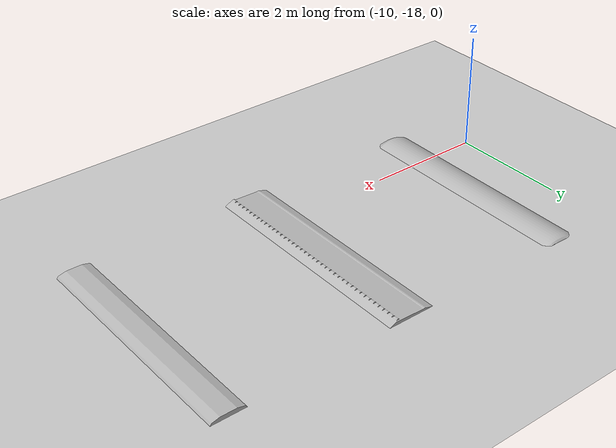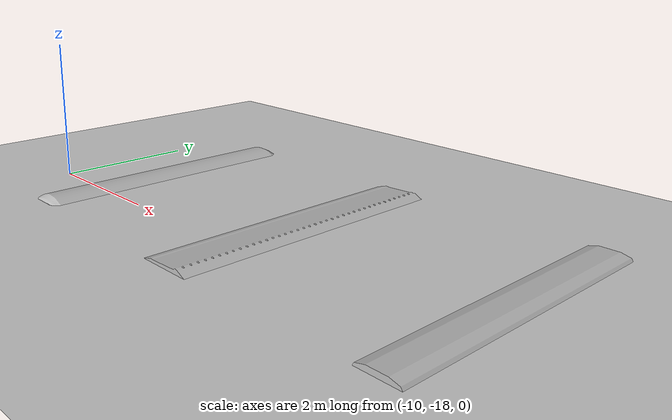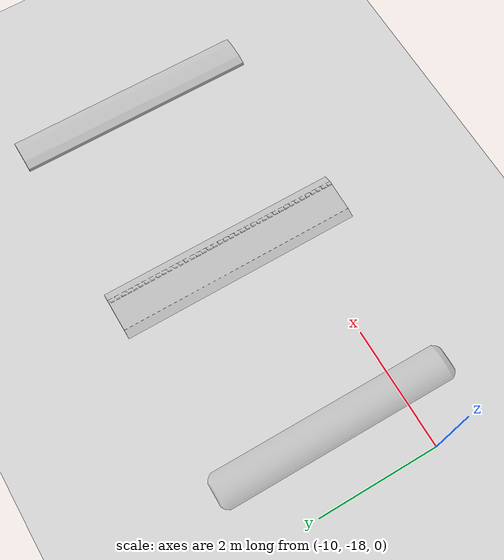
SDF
<sdf version="1.9">
 <world name="empty">
  <model name="ground_plane">
   <static>true</static>
   <link name="link">
    <collision name="collision">
     <geometry><plane><normal>0 0 1</normal><size>100 100</size></plane></geometry>
    </collision>
    <visual name="visual">
     <geometry><plane><normal>0 0 1</normal><size>100 100</size></plane></geometry>
     <material>
      <ambient>0.8 0.8 0.8 1</ambient>
      <diffuse>0.8 0.8 0.8 1</diffuse>
      <specular>0.8 0.8 0.8 1</specular>
     </material>
    </visual>
    <inertial>
     <mass>1</mass>
     <inertia><ixx>1</ixx><ixy>0</ixy><ixz>0</ixz><iyy>1</iyy><iyz>0</iyz><izz>1</izz></inertia>
    </inertial>
   </link>
  </model>
  <model name="speed_bump_1">
   <static>true</static>
   <link name="link">
    <collision name="collision">
     <geometry><mesh><uri>models/speed_bump_1//bump_1.dae</uri></mesh></geometry>
     <surface><friction><ode><mu>0.90000000000000002</mu><mu2>0.59999999999999998</mu2></ode></friction></surface>
    </collision>
    <visual name="visual"><geometry><mesh><uri>models/speed_bump_1//bump_1.dae</uri></mesh></geometry></visual>
    <inertial>
     <mass>1</mass>
     <inertia><ixx>1</ixx><ixy>0</ixy><ixz>0</ixz><iyy>1</iyy><iyz>0</iyz><izz>1</izz></inertia>
    </inertial>
   </link>
   <pose>-2.46827 -18.89366 0.0 0.0 -0.0 1.57</pose>
  </model>
  <model name="speed_bump_2">
   <static>true</static>
   <link name="link">
    <collision name="collision">
     <geometry><mesh><uri>models/speed_bump_2//bump_2.dae</uri></mesh></geometry>
     <surface><friction><ode><mu>0.90000000000000002</mu><mu2>0.59999999999999998</mu2></ode></friction></surface>
    </collision>
    <visual name="visual"><geometry><mesh><uri>models/speed_bump_2//bump_2.dae</uri></mesh></geometry></visual>
    <inertial>
     <mass>1</mass>
     <inertia><ixx>1</ixx><ixy>0</ixy><ixz>0</ixz><iyy>1</iyy><iyz>0</iyz><izz>1</izz></inertia>
    </inertial>
   </link>
   <pose>-5.52609 -18.95126 0.0 0.0 -0.0 1.57</pose>
  </model>
  <model name="speed_bump_3">
   <static>true</static>
   <link name="link">
    <collision name="collision">
     <geometry><mesh><uri>models/speed_bump_3//bump_3.dae</uri></mesh></geometry>
     <surface><friction><ode><mu>0.90000000000000002</mu><mu2>0.59999999999999998</mu2></ode></friction></surface>
    </collision>
    <visual name="visual"><geometry><mesh><uri>models/speed_bump_3//bump_3.dae</uri></mesh></geometry></visual>
    <inertial>
     <mass>1</mass>
     <inertia><ixx>1</ixx><ixy>0</ixy><ixz>0</ixz><iyy>1</iyy><iyz>0</iyz><izz>1</izz></inertia>
    </inertial>
   </link>
   <pose>-8.70571 -18.90436 0.0 0.0 -0.0 1.56477</pose>
  </model>
 </world>
</sdf>
